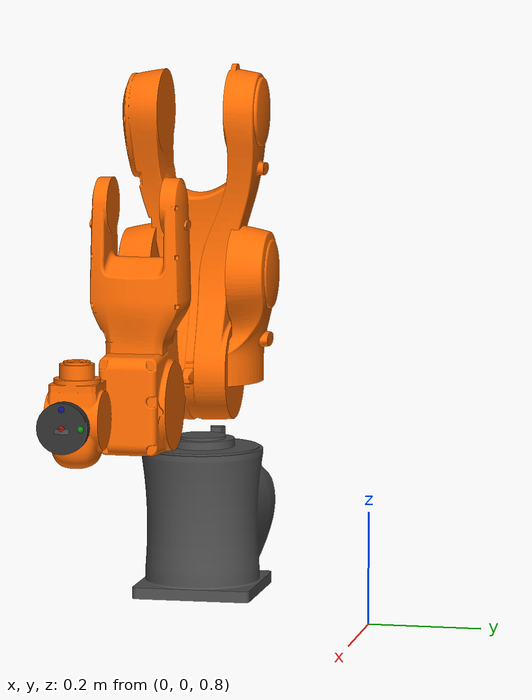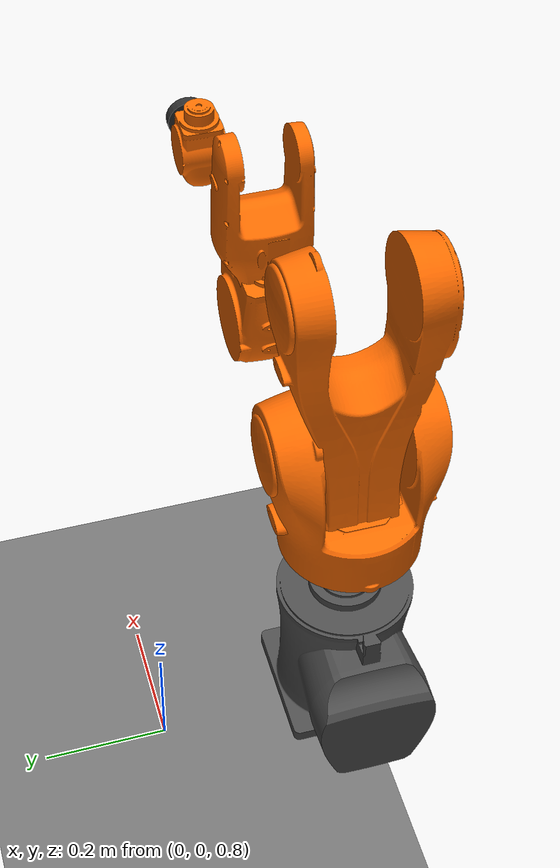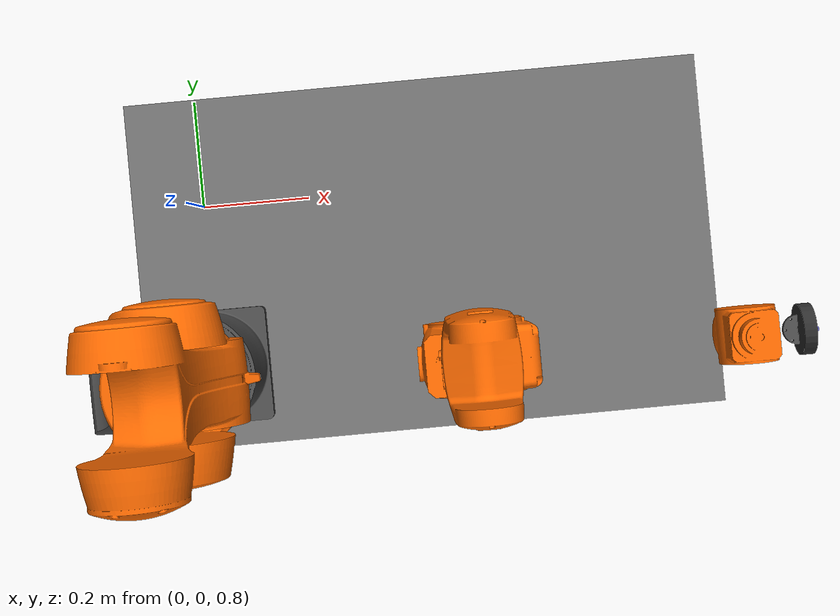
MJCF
<mujoco model="kuka_test">

  <option timestep="0.001"
          gravity="0 0 -9.81"
          integrator="RK4"/>

  <include file="includes/arm.xml"/>
  <include file="includes/lights.xml"/>

  <visual>
    <global offwidth="1280" offheight="720"/>
    <headlight ambient="0.15 0.15 0.15" diffuse="0.2 0.2 0.2" specular="0 0 0"/>
  </visual>

  <worldbody>
    <geom name="floor"
          type="plane"
          size="5 5 0.1"
          rgba="0.45 0.45 0.45 1"
          condim="3"
          contype="2" conaffinity="3"/>
  </worldbody>

</mujoco>

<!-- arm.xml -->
<mujoco>
  <compiler meshdir="/home/shahar/Desktop/phase4/VLATraining/sim/assets/urdf/meshes/" angle="radian"/>

  <asset>
    <mesh name="base_link" content_type="model/stl" file="base_link.stl"/>
    <mesh name="link_1"    content_type="model/stl" file="link_1.stl"/>
    <mesh name="link_2"    content_type="model/stl" file="link_2.stl"/>
    <mesh name="link_3"    content_type="model/stl" file="link_3.stl"/>
    <mesh name="link_4"    content_type="model/stl" file="link_4.stl"/>
    <mesh name="link_5"    content_type="model/stl" file="link_5.stl"/>
    <mesh name="link_6"    content_type="model/stl" file="link_6.stl"/>
  </asset>

  <worldbody>
    <!--
      kuka_base is the single configuration point for arm placement.
      Change pos here to mount the arm anywhere in the world.
    -->
    <body name="kuka_base" pos="0 -0.3 0.85">

      <!-- Base link: fixed pedestal — collision disabled (it's bolted to the table) -->
      <geom type="mesh" rgba="0.3 0.3 0.3 1" mesh="base_link"
            contype="0" conaffinity="0"/>

      <!-- Arm kinematic chain -->
      <body name="link_1" pos="0 0 0.4">
        <joint name="joint_a1" pos="0 0 0" axis="0 0 -1" range="-2.96706 2.96706"/>
        <geom type="mesh" rgba="1 0.42 0 1" mesh="link_1"
              contype="1" conaffinity="2"/>

        <body name="link_2" pos="0.025 0 0">
          <joint name="joint_a2" pos="0 0 0" axis="0 1 0" range="-3.31613 0.785398"/>
          <geom type="mesh" rgba="1 0.42 0 1" mesh="link_2"
                contype="1" conaffinity="2"/>

          <body name="link_3" pos="0.455 0 0">
            <joint name="joint_a3" pos="0 0 0" axis="0 1 0" range="-2.0944 2.72271"/>
            <geom type="mesh" rgba="1 0.42 0 1" mesh="link_3"
                  contype="1" conaffinity="2"/>

            <body name="link_4" pos="0 0 0.035">
              <joint name="joint_a4" pos="0 0 0" axis="-1 0 0" range="-3.22886 3.22886"/>
              <geom type="mesh" rgba="1 0.42 0 1" mesh="link_4"
                    contype="1" conaffinity="2"/>

              <body name="link_5" pos="0.42 0 0">
                <joint name="joint_a5" pos="0 0 0" axis="0 1 0" range="-2.0944 2.0944"/>
                <geom type="mesh" rgba="1 0.42 0 1" mesh="link_5"
                      contype="1" conaffinity="2"/>

                <body name="link_6" pos="0.08 0 0">
                  <joint name="joint_a6" pos="0 0 0" axis="-1 0 0" range="-6.10865 6.10865"/>
                  <geom type="mesh" rgba="0.3 0.3 0.3 1" mesh="link_6"
                        contype="1" conaffinity="2"/>

                  <body name="em_pad" pos="0.01 0 0">
                    <!-- Cylinder: local X axis, radius=0.04, half-length=0.01 -->
                    <geom name="em_pad_geom"
                          type="cylinder"
                          fromto="-0.01 0 0  0.01 0 0"
                          size="0.04"
                          rgba="0.18 0.18 0.18 1"
                          contype="1" conaffinity="2"/>

                    <site name="em_contact_site"
                          pos="0.01 0 0"
                          size="0.005" rgba="1 0 0 0.5"/>
                    <site name="em_dot_b"
                          pos="0.01 0.03 0"
                          size="0.005" rgba="0 1 0 0.5"/>
                    <site name="em_dot_c"
                          pos="0.01 0 0.03"
                          size="0.005" rgba="0 0 1 0.5"/>
                  </body><!-- em_pad -->

                </body><!-- link_6 -->

              </body><!-- link_5 -->
            </body><!-- link_4 -->
          </body><!-- link_3 -->
        </body><!-- link_2 -->
      </body><!-- link_1 -->

    </body><!-- kuka_base -->
  </worldbody>

  <actuator>
    <position name="act_a1" joint="joint_a1" kp="500" kv="10" forcelimited="true" forcerange="-500 500"/>
    <position name="act_a2" joint="joint_a2" kp="500" kv="10" forcelimited="true" forcerange="-500 500"/>
    <position name="act_a3" joint="joint_a3" kp="500" kv="10" forcelimited="true" forcerange="-300 300"/>
    <position name="act_a4" joint="joint_a4" kp="300" kv="10" forcelimited="true" forcerange="-200 200"/>
    <position name="act_a5" joint="joint_a5" kp="200" kv="10" forcelimited="true" forcerange="-100 100"/>
    <position name="act_a6" joint="joint_a6" kp="100" kv="10" forcelimited="true" forcerange="-50  50"/>
  </actuator>

</mujoco>

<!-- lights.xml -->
<mujoco>
  <worldbody>

    <!-- Key light: overhead, casts shadows -->
    <light name="key"
           pos="0 0 4"
           dir="0 0 -1"
           diffuse="0.9 0.9 0.9"
           specular="0.3 0.3 0.3"
           directional="true"
           castshadow="true"/>

    <!-- Fill light: front-left, softens harsh shadows -->
    <light name="fill"
           pos="2 -2 3"
           dir="-0.5 0.5 -1"
           diffuse="0.45 0.45 0.45"
           specular="0 0 0"
           directional="true"
           castshadow="false"/>

  </worldbody>
</mujoco>
